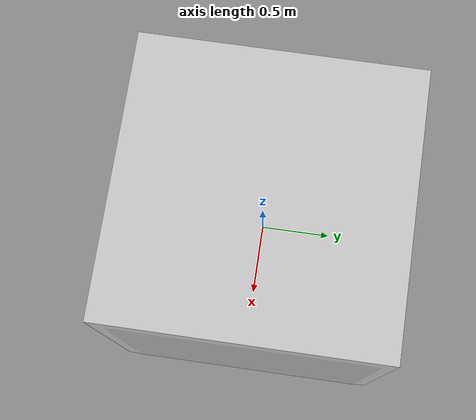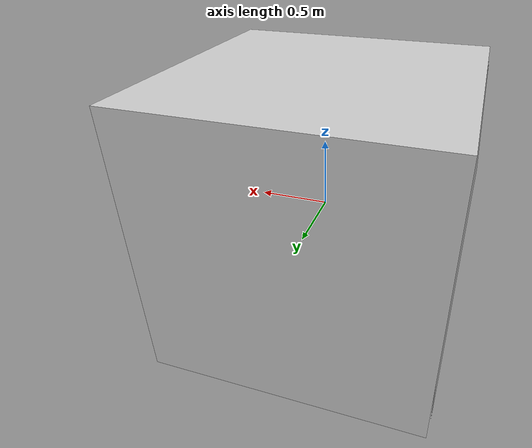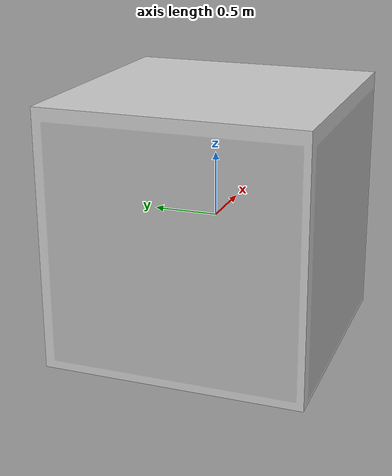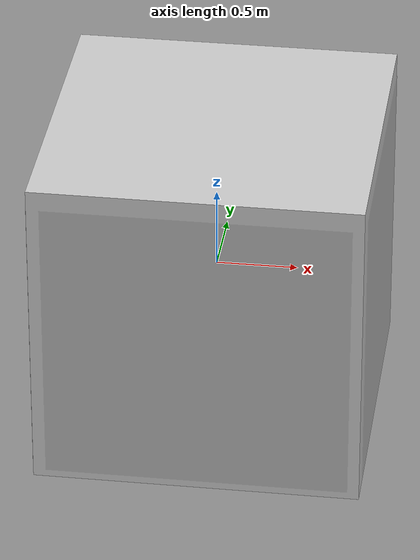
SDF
<?xml version="1.0" ?>
<sdf version="1.4">
    <model name="box_lines_points">
      <static>1</static>
      <link name="link">
        <inertial>
          <pose>0 0 0 0 0 0</pose>
          <mass>1.0</mass>
          <inertia>
            <ixx>1.0</ixx>
            <ixy>000000</ixy>
            <ixz>0.000000</ixz>
            <iyy>1.0</iyy>
            <iyz>0.000000</iyz>
            <izz>1.0</izz>
          </inertia>
        </inertial>
        <collision name="collision">
          <pose>0 0 0 0 0 0</pose>
          <geometry>
            <mesh>
                <uri>model://box_lines_points/meshes/box_lines_points.dae</uri>
                <scale>1.0 1.0 1.0</scale>
            </mesh>
          </geometry>
        </collision>
        <visual name="visual">
          <pose>0 0 0 0 0 0</pose>
          <geometry>
            <mesh>
                <uri>model://box_lines_points/meshes/box_lines_points.dae</uri>
                <scale>1.0 1.0 1.0</scale>
            </mesh>
          </geometry>
        </visual>
      </link>
    </model>
</sdf>
